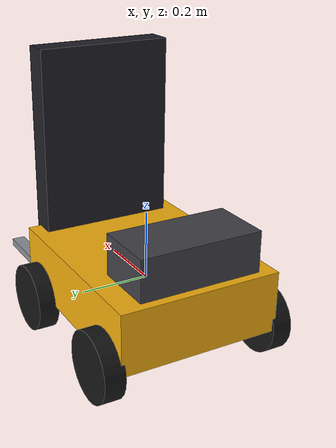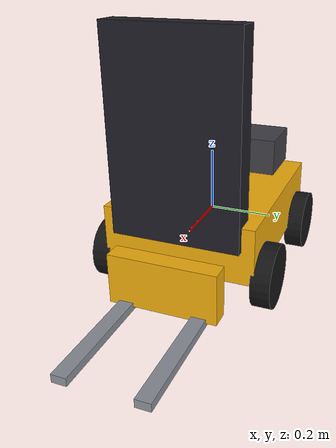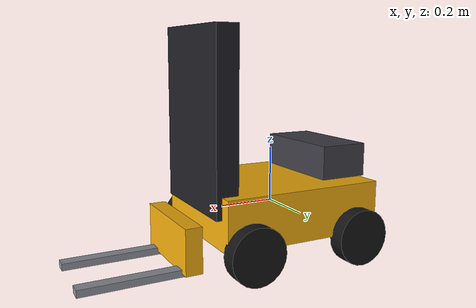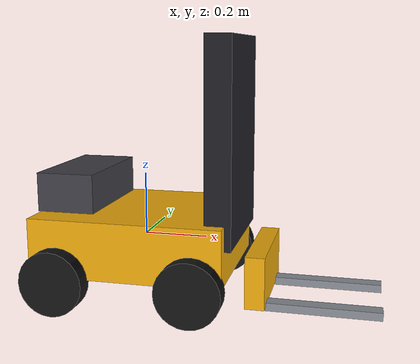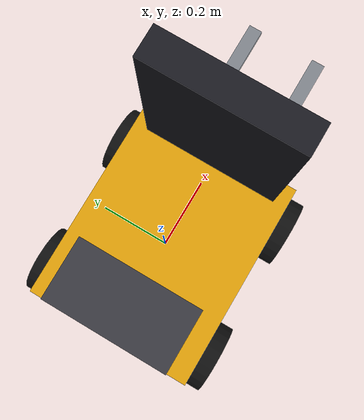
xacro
<?xml version="1.0"?>
<robot xmlns:xacro="http://www.ros.org/wiki/xacro" name="forkbot">

  <!-- Chasis principal: 60 x 48 x 18 cm -->
  <material name="amarillo">
    <color rgba="0.95 0.68 0.05 1.0"/>
  </material>

  <link name="base_link">
    <visual>
      <geometry>
        <box size="0.60 0.48 0.18"/>
      </geometry>
      <material name="amarillo"/>
    </visual>

    <collision>
      <geometry>
        <box size="0.60 0.48 0.18"/>
      </geometry>
    </collision>

    <inertial>
      <origin xyz="0 0 0" rpy="0 0 0"/>
      <mass value="18.0"/>
      <inertia ixx="0.3942" ixy="0" ixz="0"
               iyy="0.5886" iyz="0" izz="0.8856"/>
    </inertial>
  </link>

  <!-- Cuatro ruedas del montacargas -->
  <xacro:include filename="forkbot_wheels.xacro"/>

  <xacro:wheel name="front_left" x="0.21" y="0.26"/>
  <xacro:wheel name="front_right" x="0.21" y="-0.26"/>
  <xacro:wheel name="rear_left" x="-0.21" y="0.26"/>
  <xacro:wheel name="rear_right" x="-0.21" y="-0.26"/>

  <!-- Mastil delantero del montacargas -->
  <xacro:include filename="forkbot_mast.xacro"/>
  <xacro:forkbot_mast/>

  <!-- Contrapeso trasero -->
  <xacro:include filename="forkbot_counterweight.xacro"/>
  <xacro:forkbot_counterweight/>

  <!-- Elevador del montacargas -->
  <xacro:include filename="forkbot_lift.xacro"/>
  <xacro:forkbot_lift/>

  <!-- Horquillas delanteras -->
  <xacro:include filename="forkbot_forks.xacro"/>
  <xacro:forkbot_fork name="fork_left" y="0.115"/>
  <xacro:forkbot_fork name="fork_right" y="-0.115"/>

</robot>

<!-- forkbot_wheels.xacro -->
<robot xmlns:xacro="http://www.ros.org/wiki/xacro">

  <xacro:macro name="wheel" params="name x y">

    <link name="${name}_link">
      <visual>
        <origin rpy="1.5707963 0 0"/>
        <geometry>
          <cylinder radius="0.10" length="0.06"/>
        </geometry>
        <material name="negro">
          <color rgba="0.08 0.08 0.08 1"/>
        </material>
      </visual>

      <collision>
        <origin rpy="1.5707963 0 0"/>
        <geometry>
          <cylinder radius="0.10" length="0.06"/>
        </geometry>
      </collision>

      <inertial>
        <mass value="1.0"/>
        <inertia ixx="0.0028" ixy="0" ixz="0"
                 iyy="0.005" iyz="0" izz="0.0028"/>
      </inertial>
    </link>

    <joint name="${name}_joint" type="continuous">
      <parent link="base_link"/>
      <child link="${name}_link"/>
      <origin xyz="${x} ${y} -0.095"/>
      <axis xyz="0 1 0"/>
    </joint>

  </xacro:macro>
</robot>

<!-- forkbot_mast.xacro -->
<robot xmlns:xacro="http://www.ros.org/wiki/xacro">

  <!-- Mastil vertical del montacargas -->
  <xacro:macro name="forkbot_mast">

    <link name="mast_link">
      <visual>
        <geometry>
          <box size="0.08 0.40 0.62"/>
        </geometry>
        <material name="gris_oscuro">
          <color rgba="0.12 0.12 0.15 1"/>
        </material>
      </visual>

      <collision>
        <geometry>
          <box size="0.08 0.40 0.62"/>
        </geometry>
      </collision>

      <inertial>
        <mass value="3.0"/>
        <inertia ixx="0.1361" ixy="0" ixz="0"
                 iyy="0.0977" iyz="0" izz="0.0416"/>
      </inertial>
    </link>

    <joint name="mast_fixed_joint" type="fixed">
      <parent link="base_link"/>
      <child link="mast_link"/>
      <origin xyz="0.28 0 0.325"/>
    </joint>

  </xacro:macro>

</robot>

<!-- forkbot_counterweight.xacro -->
<robot xmlns:xacro="http://www.ros.org/wiki/xacro">

  <!-- Contrapeso trasero de ForkBot -->
  <xacro:macro name="forkbot_counterweight">

    <link name="counterweight_link">
      <visual>
        <geometry>
          <box size="0.18 0.36 0.12"/>
        </geometry>
        <material name="gris_contrapeso">
          <color rgba="0.25 0.25 0.28 1"/>
        </material>
      </visual>

      <collision>
        <geometry>
          <box size="0.18 0.36 0.12"/>
        </geometry>
      </collision>

      <inertial>
        <mass value="8.0"/>
        <inertia ixx="0.096" ixy="0" ixz="0"
                 iyy="0.0312" iyz="0" izz="0.108"/>
      </inertial>
    </link>

    <joint name="counterweight_fixed_joint" type="fixed">
      <parent link="base_link"/>
      <child link="counterweight_link"/>
      <origin xyz="-0.20 0 0.16"/>
    </joint>

  </xacro:macro>

</robot>

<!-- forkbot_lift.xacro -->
<robot xmlns:xacro="http://www.ros.org/wiki/xacro">

  <!-- Carro elevador de las horquillas -->
  <xacro:macro name="forkbot_lift">

    <link name="carriage_link">
      <visual>
        <geometry>
          <box size="0.06 0.34 0.16"/>
        </geometry>
        <material name="amarillo"/>
      </visual>

      <collision>
        <geometry>
          <box size="0.06 0.34 0.16"/>
        </geometry>
      </collision>

      <inertial>
        <mass value="1.5"/>
        <inertia ixx="0.01765" ixy="0" ixz="0"
                 iyy="0.00365" iyz="0" izz="0.0149"/>
      </inertial>
    </link>

    <joint name="lift_joint" type="prismatic">
      <parent link="mast_link"/>
      <child link="carriage_link"/>
      <origin xyz="0.105 0 -0.41"/>
      <axis xyz="0 0 1"/>
      <limit lower="0.0" upper="0.42"
             effort="100.0" velocity="0.15"/>
      <dynamics damping="8.0" friction="2.0"/>
    </joint>

  </xacro:macro>

</robot>

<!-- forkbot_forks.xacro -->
<robot xmlns:xacro="http://www.ros.org/wiki/xacro">

  <!-- Horquillas del montacargas -->
  <xacro:macro name="forkbot_fork" params="name y">

    <link name="${name}_link">
      <visual>
        <geometry>
          <box size="0.36 0.045 0.025"/>
        </geometry>
        <material name="metal">
          <color rgba="0.55 0.57 0.60 1"/>
        </material>
      </visual>

      <collision>
        <geometry>
          <box size="0.36 0.045 0.025"/>
        </geometry>
      </collision>

      <inertial>
        <mass value="0.4"/>
        <inertia ixx="0.000088" ixy="0" ixz="0"
                 iyy="0.00434" iyz="0" izz="0.004388"/>
      </inertial>
    </link>

    <joint name="${name}_fixed_joint" type="fixed">
      <parent link="carriage_link"/>
      <child link="${name}_link"/>
      <origin xyz="0.19 ${y} -0.08"/>
    </joint>

  </xacro:macro>

</robot>
